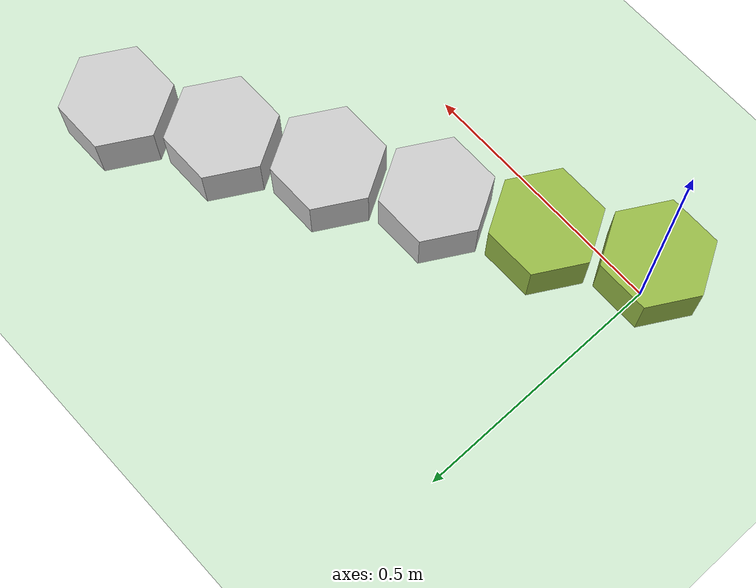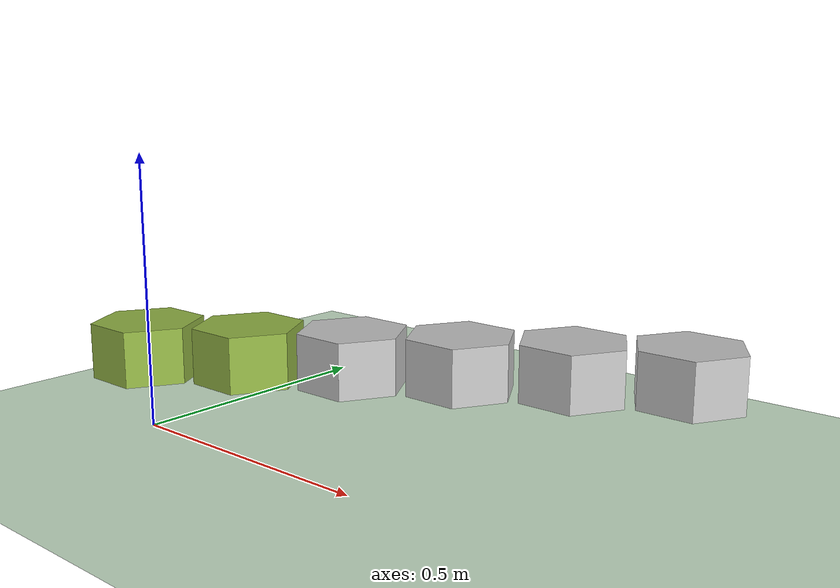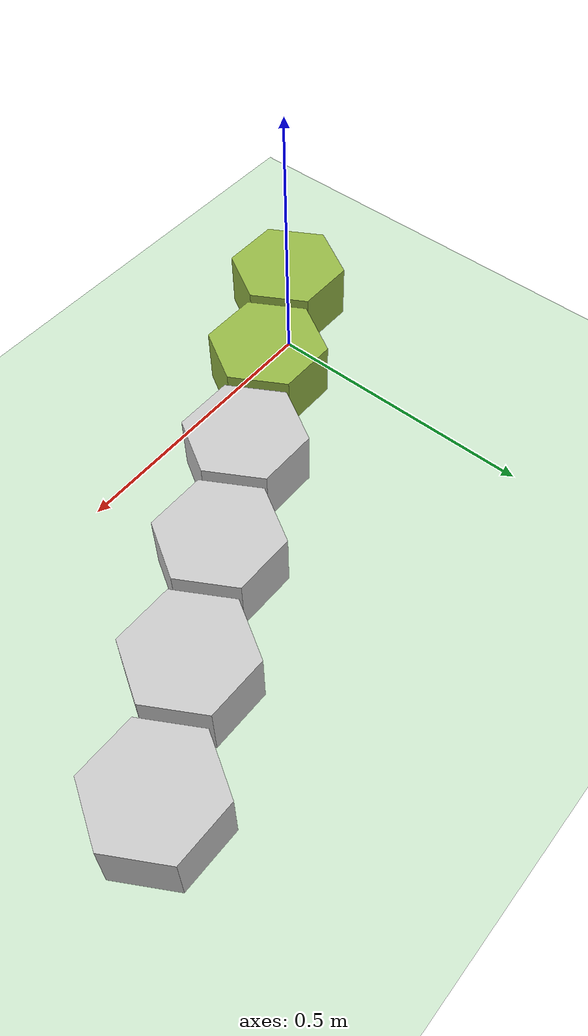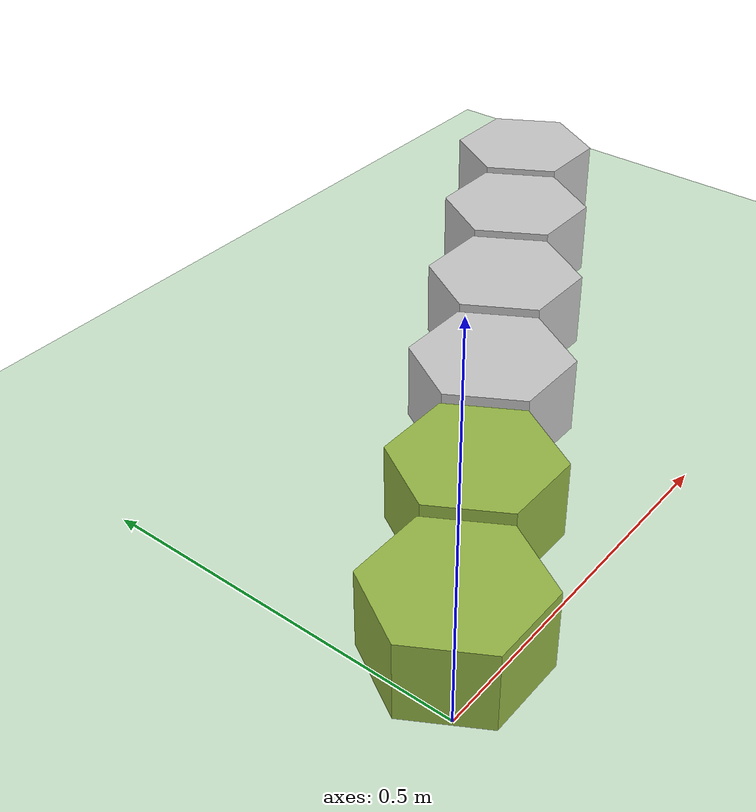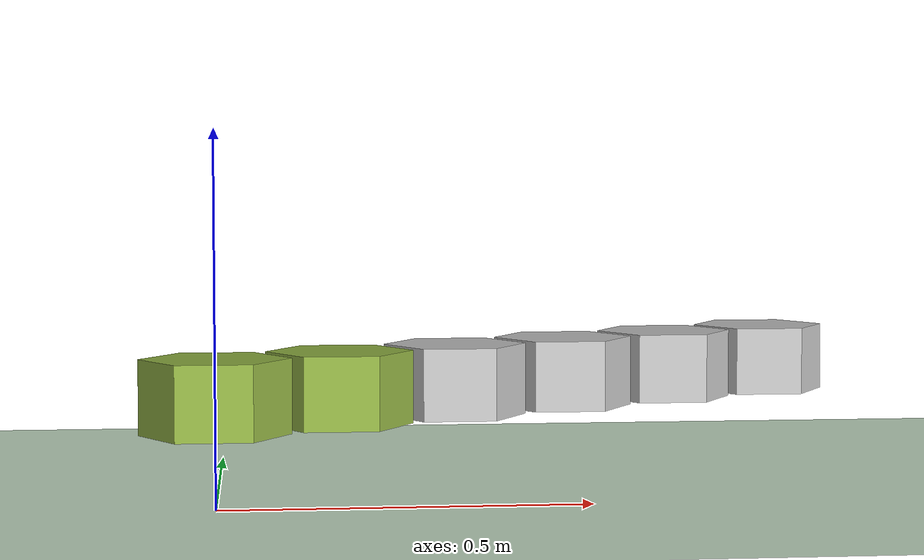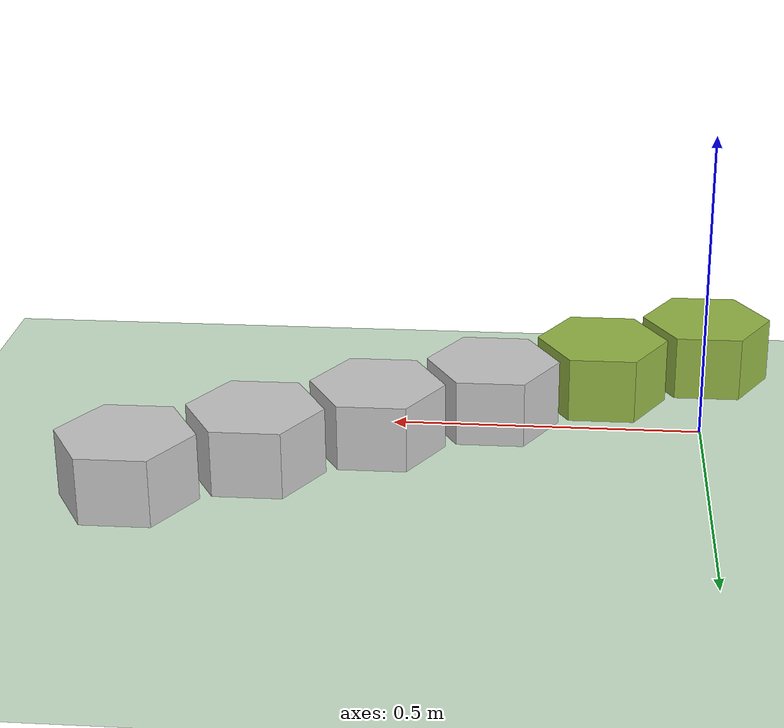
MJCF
<mujoco model="hinge_chain">
  <compiler eulerseq="zyx" meshdir="parts" texturedir="assets" autolimits="true"/>
  <option>
    <flag filterparent="disable"/>
  </option>
  <default>
    <joint range="-20 20"/>
  </default>
  <asset>
    <texture type="skybox" builtin="gradient" rgb1="0.3 0.5 0.7" rgb2="0 0 0" width="512" height="512"/>
    <texture name="texgeom" type="cube" builtin="flat" mark="cross" width="127" height="1278" rgb1="0.8 0.6 0.4" rgb2="0.8 0.6 0.4" markrgb="1 1 1" random="0.01"/>
    <texture name="texplane" type="2d" builtin="checker" rgb1=".2 .3 .4" rgb2=".1 0.15 0.2" width="512" height="512" mark="cross" markrgb=".8 .8 .8"/>
    <material name="matplane" reflectance="0.3" texture="texplane" texrepeat="1 1" texuniform="true"/>
    <material name="matgeom" texture="texgeom" texuniform="true" rgba="0.8 0.6 .4 1"/>
    <mesh file="hex-q.obj" name="hex" scale="1 1 1"/>
  </asset>
  <worldbody>
    <light cutoff="100" diffuse="1 1 1" dir="-0 0 -1.3" directional="true" exponent="1" pos="0 0 1.3" specular=".8 .8 .8"/>
    <light mode="targetbodycom" target="box0" pos="3 0 4" cutoff="100" diffuse="1 1 1" specular=".8 .8 .8"/>
    <geom name="floor" pos="0 0 0" rgba="0.8 0.9 0.8 1" size="40 40 40" type="plane" material="matplane" conaffinity="1" condim="6" friction="0.4 .0 .0" priority="10"/>
    <body name="box0" pos="0 0 0.1">
      <joint type="free"/>
      <geom name="box0" type="mesh" mesh="hex" rgba="0.5843137254901961 0.7176470588235294 0.27450980392156865 1" mass="1"/>
      <body name="box1" pos="0.16500000000000004 0.09526279441628827 0">
        <joint name="hinge1" type="hinge" axis="0 0 1" pos="-0.08250000000000002 -0.04763139720814413 0"/>
        <geom name="box1" type="mesh" mesh="hex" rgba="0.5843137254901961 0.7176470588235294 0.27450980392156865 1" mass="1"/>
        <body name="box2" pos="0.16500000000000004 0.09526279441628827 0">
          <joint name="hinge2" type="hinge" axis="0 0 1" pos="-0.08250000000000002 -0.04763139720814413 0"/>
          <geom name="box2" type="mesh" mesh="hex" rgba="0.7803921568627451 0.7803921568627451 0.7803921568627451 1" mass="1"/>
          <body name="box3" pos="0.16500000000000004 0.09526279441628827 0">
            <joint name="hinge3" type="hinge" axis="0 0 1" pos="-0.08250000000000002 -0.04763139720814413 0"/>
            <geom name="box3" type="mesh" mesh="hex" rgba="0.7803921568627451 0.7803921568627451 0.7803921568627451 1" mass="1"/>
            <body name="box4" pos="0.16500000000000004 0.09526279441628827 0">
              <joint name="hinge4" type="hinge" axis="0 0 1" pos="-0.08250000000000002 -0.04763139720814413 0"/>
              <geom name="box4" type="mesh" mesh="hex" rgba="0.7803921568627451 0.7803921568627451 0.7803921568627451 1" mass="1"/>
              <body name="box5" pos="0.16500000000000004 0.09526279441628827 0">
                <joint name="hinge5" type="hinge" axis="0 0 1" pos="-0.08250000000000002 -0.04763139720814413 0"/>
                <geom name="box5" type="mesh" mesh="hex" rgba="0.7803921568627451 0.7803921568627451 0.7803921568627451 1" mass="1"/>
              </body>
            </body>
          </body>
        </body>
      </body>
    </body>
  </worldbody>
</mujoco>
